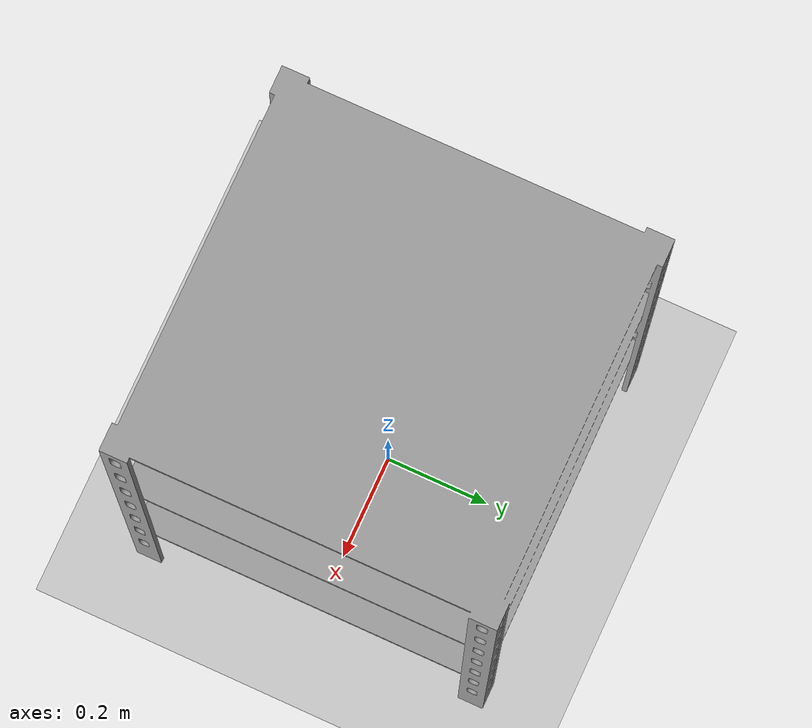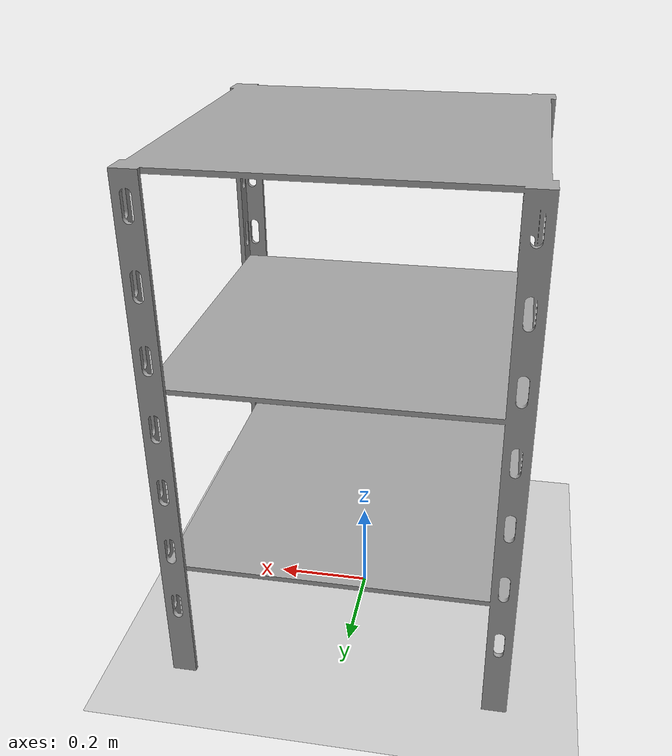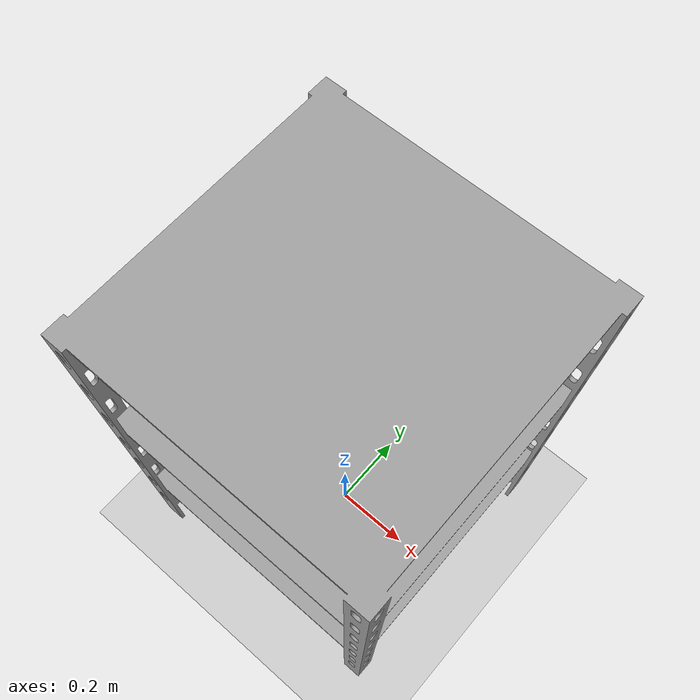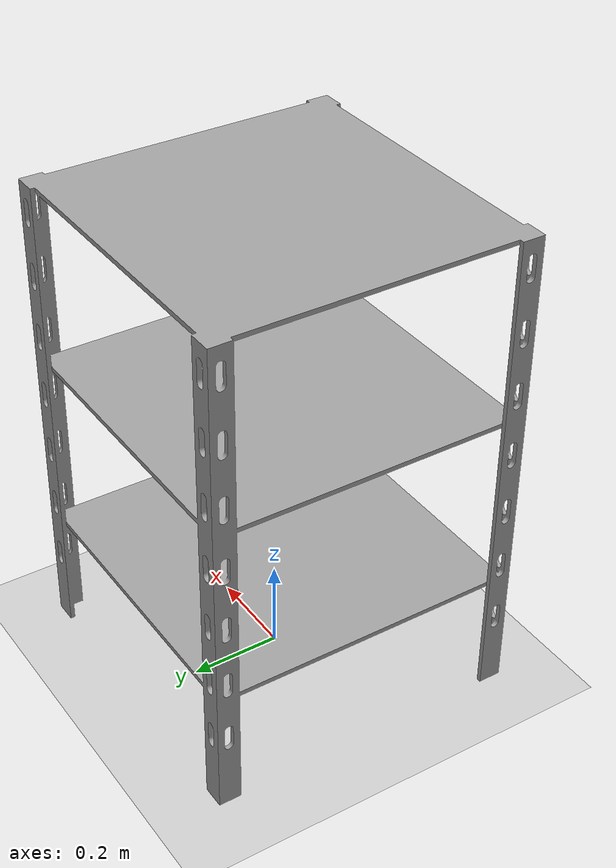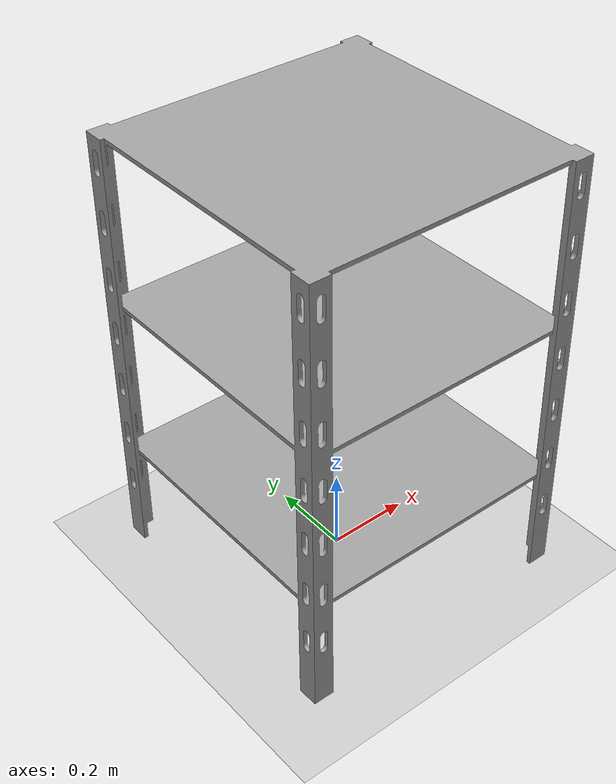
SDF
<?xml version="1.0" ?>
<sdf version="1.5">
  <world name="default">
    <!-- A global light source -->
    <include>
      <uri>model://sun</uri>
    </include>
    <!-- A ground plane -->
    <include>
      <uri>model://ground_plane</uri>
    </include>
    <!-- Test -->
    <include>
      <uri>model://shelf</uri>
    </include>
  </world>
</sdf>

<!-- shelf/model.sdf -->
<sdf version='1.6'>
  <model name='shelf'>
    <link name='link'>
      <inertial>
        <mass>0.1</mass>
        <inertia>
          <ixx>1</ixx>
          <ixy>0.00</ixy>
          <ixz>0.00</ixz>
          <iyy>1</iyy>
          <iyz>0.00</iyz>
          <izz>1</izz>
        </inertia>
      </inertial>
      <pose frame=''>0 0 0 0 -0 0</pose>
      <visual name='visual'>
        <pose frame=''>0 0 0 0 -0 0</pose>
        <geometry>
          <mesh>
            <uri>model://shelf/meshes/shelf.dae</uri>
            <scale>1 1 1</scale>
          </mesh>
        </geometry>
        <transparency>0</transparency>
        <cast_shadows>1</cast_shadows>
      </visual>
      <collision name='collision'>
        <laser_retro>0</laser_retro>
        <max_contacts>10</max_contacts>
        <pose frame=''>0 0 0 0 -0 0</pose>
        <geometry>
          <mesh>
            <uri>model://shelf/meshes/shelf.dae</uri>
            <scale>1 1 1</scale>
          </mesh>
        </geometry>
        <surface>
          <friction>
            <ode>
              <mu>1</mu>
              <mu2>1</mu2>
              <fdir1>0 0 0</fdir1>
              <slip1>0</slip1>
              <slip2>0</slip2>
            </ode>
            <torsional>
              <coefficient>1</coefficient>
              <patch_radius>1</patch_radius>
              <surface_radius>1</surface_radius>
              <use_patch_radius>1</use_patch_radius>
              <ode>
                <slip>0</slip>
              </ode>
            </torsional>
          </friction>
          <bounce>
            <restitution_coefficient>1</restitution_coefficient>
            <threshold>1e+06</threshold>
          </bounce>
          <contact>
            <collide_without_contact>0</collide_without_contact>
            <collide_without_contact_bitmask>1</collide_without_contact_bitmask>
            <collide_bitmask>1</collide_bitmask>
            <ode>
              <soft_cfm>0</soft_cfm>
              <soft_erp>0.2</soft_erp>
              <kp>1e+13</kp>
              <kd>1</kd>
              <max_vel>0.01</max_vel>
              <min_depth>0</min_depth>
            </ode>
            <bullet>
              <split_impulse>1</split_impulse>
              <split_impulse_penetration_threshold>-0.01</split_impulse_penetration_threshold>
              <soft_cfm>0</soft_cfm>
              <soft_erp>0.2</soft_erp>
              <kp>1e+13</kp>
              <kd>1</kd>
            </bullet>
          </contact>
        </surface>
      </collision>
    </link>
    <static>0</static>
    <allow_auto_disable>1</allow_auto_disable>
  </model>
</sdf>
